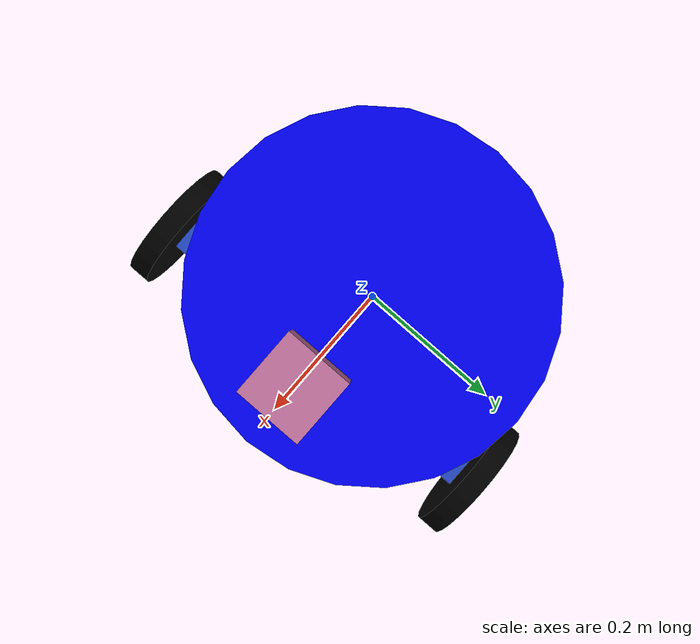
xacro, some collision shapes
<?xml version='1.0'?>

<robot name="project_robot" xmlns:xacro="http://www.ros.org/wiki/xacro">

  <xacro:macro name="box_inertia" params="m x y z"/>
  <xacro:include filename="$(find my_robot)/urdf/my_robot.gazebo"/>

  <link name="robot_footprint"></link>

  <joint name="robot_footprint_joint" type="fixed">
    <origin xyz="0 0 0" rpy="0 0 0" />
    <parent link="robot_footprint"/>
    <child link="chassis" />
  </joint>

  <link name="chassis">
    <pose>0 0 0.16 0 0 0</pose>

    <inertial>
      <mass value="15.0"/>
      <origin xyz="0 0 0" rpy="0 0 0"/>
      <inertia
        ixx="0.1" ixy="0" ixz="0"
        iyy="0.1" iyz="0"
        izz="0.1"
      />
    </inertial>

    <collision name="chassis_collision">
      <origin xyz="0 0 0" rpy="0 0 0" />
      <geometry>
        <cylinder radius="0.25" length="0.09" />
      </geometry>
    </collision>

    <visual name="chassis_visual">
      <origin xyz="0 0 0" rpy="0 0 0" />
      <geometry>
        <cylinder radius="0.25" length="0.09" />
      </geometry>
      <material name="blue">
        <color rgba="0 0 1.0 1.0" />
      </material>
    </visual>

    <collision name='back_sphere_collision'>
      <origin xyz="-0.15 0 -0.07" rpy=" 0 0 0"/>
      <geometry>
        <sphere radius="0.09"/>
      </geometry>
    </collision>

    <visual name='back_sphere_visual'>
      <origin xyz="-0.15 0 -0.07" rpy=" 0 0 0"/>
      <geometry>
        <sphere radius="0.09"/>
      </geometry>
    </visual>

    <collision name='wheel_frame_collision'>
      <origin xyz="0.1 0 -0.07" rpy=" 0 0 0"/>
      <geometry>
        <box size="0.05 0.5 0.05"/>
      </geometry>
    </collision>

    <visual name='wheel_frame_visual'>
      <origin xyz="0.1 0 -0.07" rpy=" 0 0 0"/>
      <geometry>
        <box size="0.05 0.5 0.05"/>
      </geometry>
    </visual>

    <collision name='sensor_frame_collision'>
      <origin xyz="0.175 0 -0.07" rpy=" 0 0 0"/>
      <geometry>
        <box size="0.1 0.05 0.05"/>
      </geometry>
    </collision>

    <visual name='sensor_frame_visual'>
      <origin xyz="0.175 0 -0.07" rpy=" 0 0 0"/>
      <geometry>
        <box size="0.1 0.05 0.05"/>
      </geometry>
    </visual>

  </link>

  <link name="left_wheel">

    <inertial>
      <mass value="5" />
      <origin xyz="0 0 0" rpy="0 1.5707 1.5707" />
      <inertia
          ixx="0.15" ixy="0" ixz="0"
          iyy="0.15" iyz="0"
          izz="0.15"
      />
    </inertial>

    <collision name="left_wheel_collision">
      <origin xyz="0 0 0" rpy="0 1.5707 1.5707"/>
      <geometry>
        <cylinder radius="0.09" length="0.03"/>
      </geometry>
    </collision>

    <visual name="left_wheel_visual">
      <origin xyz="0 0 0" rpy="0 1.5707 1.5707"/>
      <geometry>
        <cylinder radius="0.09" length="0.03"/>
      </geometry>
      <material name="black">
        <color rgba="0 0 0 1.0" />
      </material>
    </visual>

  </link>

  <link name="right_wheel">

    <inertial>
      <mass value="5" />
      <origin xyz="0 0 0" rpy="0 1.5707 1.5707" />
      <inertia
          ixx="0.1" ixy="0" ixz="0"
          iyy="0.1" iyz="0"
          izz="0.1"
      />
    </inertial>

    <collision name="right_wheel_collision">
      <origin xyz="0 0 0" rpy="0 1.5707 1.5707"/>
      <geometry>
        <cylinder radius="0.09" length="0.03"/>
      </geometry>
    </collision>

    <visual name="right_wheel_visual">
      <origin xyz="0 0 0" rpy="0 1.5707 1.5707"/>
      <geometry>
        <cylinder radius="0.09" length="0.03"/>
      </geometry>
      <material name="black">
        <color rgba="0 0 0 1.0" />
      </material>
    </visual>

  </link>

  <joint type="continuous" name="left_wheel_hinge">
    <origin xyz="0.1 0.265 -0.07" rpy="0 0 0" />
    <child link="left_wheel"/>
    <parent link="chassis"/>
    <axis xyz="0 1 0" rpy="0 0 0"/>
    <limit effort="10000" velocity="1000"/>
    <dynamics damping="1.0" friction="1.0" />
  </joint>

  <joint type="continuous" name="right_wheel_hinge">
    <origin xyz="0.1 -0.265 -0.07" rpy="0 0 0" />
    <child link="right_wheel"/>
    <parent link="chassis"/>
    <axis xyz="0 1 0" rpy="0 0 0"/>
    <limit effort="10000" velocity="1000"/>
    <dynamics damping="1.0" friction="1.0" />
  </joint>

  <link name="camera">

    <inertial>
      <mass value="0.1" />
      <origin xyz="0 0 0" rpy="0 0 0" />
      <box_inertia m="0.1" x="0.05" y="0.05" z="0.05" />
      <inertia
        ixx="1e-6" ixy="0" ixz="0"
        iyy="1e-6" iyz="0"
        izz="1e-6"
      />
    </inertial>

    <collision name="camera_collision">
      <origin xyz="0 0 0" rpy="0 0 0" />
      <geometry>
        <box size="0.05 0.05 0.05" />
      </geometry>
    </collision>

    <visual name="camera_visual">
      <origin xyz="0 0 0" rpy="0 0 0" />
      <geometry>
        <box size="0.05 0.05 0.05" />
      </geometry>
      <material name="red">
        <color rgba="1.0 0 0 1.0" />
      </material>
    </visual>

  </link>

  <joint name="camera_optical_joint" type="fixed">
    <origin xyz="0 0 0" rpy="-1.5707 0 -1.5707"/>
    <parent link="camera"/>
    <child link="camera_optical"/>
  </joint>

  <link name="camera_optical">
  </link>

  <link name="hokuyo">

    <inertial>
      <mass value="0.1" />
      <origin xyz="0 0 0" rpy="0 0 0" />
      <box_inertia m="0.1" x="0.05" y="0.05" z="0.05" />
      <inertia
        ixx="1e-6" ixy="0" ixz="0"
        iyy="1e-6" iyz="0"
        izz="1e-6"
      />
    </inertial>

    <collision name="hokuyo_collision">
      <origin xyz="0 0 0" rpy="0 0 0" />
      <geometry>
        <box size="0.1 0.1 0.1" />
      </geometry>
    </collision>

    <visual name="hokuyo_visual">
      <origin xyz="0 0 0" rpy="0 0 0" />
      <geometry>
        <mesh filename="package://my_robot/meshes/hokuyo.dae" />
      </geometry>
    </visual>

  </link>

  <joint name="hokuyo_joint" type="fixed">
    <axis xyz="0 1 0" />
    <origin xyz="0.15 0 0.07" rpy="0 0 0" />
    <parent link="chassis" />
    <child link="hokuyo" />
  </joint>

  <joint name="camera_joint" type="fixed">
    <axis xyz="0 1 0" />
    <origin xyz="0.225 0 -0.07" rpy="0 0 0" />
    <parent link="chassis" />
    <child link="camera" />
  </joint>

  <gazebo reference="chassis">
    <material>Gazebo/Blue</material>
  </gazebo>
  <gazebo reference="left_wheel">
    <material>Gazebo/Black</material>
  </gazebo>
  <gazebo reference="right_wheel">
    <material>Gazebo/Black</material>
  </gazebo>
  <gazebo reference="camera">
    <material>Gazebo/Red</material>
  </gazebo>

</robot>
